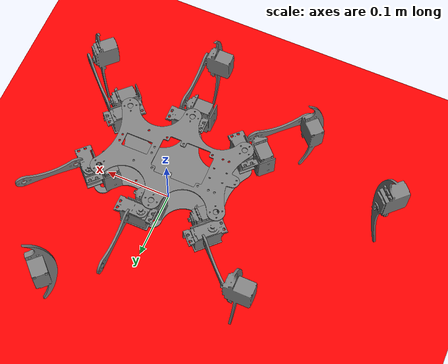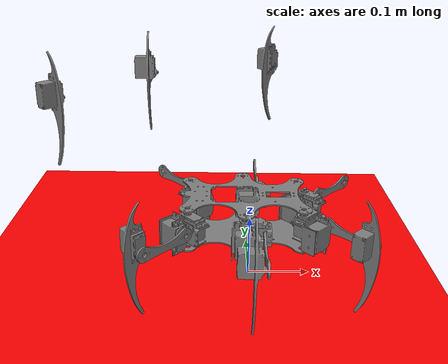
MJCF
<mujoco model="Hexapod:Nimbus">
    <asset>
        <texture type="skybox" builtin="gradient" rgb1="1 1 1" rgb2=".6 .8 1" width="256" height="256"/>
        <mesh name="upper" scale="0.001 0.001 0.001" file="STLs/Upper_Chassis.stl"></mesh>
        <mesh name="lower" scale="0.001 0.001 0.001" file="STLs/Lower_Chassis.stl"></mesh>
        <mesh name="coxa_left" scale="0.001 0.001 0.001" file="STLs/left_servo_with_bracket.stl"></mesh>
        <mesh name="coxa_right" scale="0.001 0.001 0.001" file="STLs/right_servo_with_bracket.stl"></mesh>
        <mesh name="femur" scale="0.001 0.001 0.001" file="STLs/Tibia.stl"></mesh>
        <mesh name="tibia_left" scale="0.001 0.001 0.001" file="STLs/left_leg_with_servo.stl"></mesh>
        <mesh name="tibia_right" scale="0.001 0.001 0.001" file="STLs/right_leg_with_servo.stl"></mesh>
    </asset>

    <default class="main">
        <geom condim="6" friction="1.2 0.5 0.01" />
        <joint limited="true" damping="3" stiffness="1" range="-60 60"/>
    </default>

<worldbody>
        <light pos="1 1 1" dir="0 -1 -1" diffuse="1 1 1"/>
        <geom type="plane" size="100 100 0.1" rgba="1 0 0 0.3"/>

        <body name="lower">
            <geom type="mesh" name="lower" mesh="lower" quat="0 0 0.707 0.707" pos="-0.010 0 .075" mass="0.294"></geom>
            <freejoint />
        </body>

        <body name="upper">
            <geom type="mesh" name="upper" mesh="upper" quat="0 0 0.707 0.707" pos="-.010 0 0.142" mass="0.216" ></geom>
            <freejoint />
        <body name="cx_1" pos=".091 -.0574 .112" euler="0 0 45">
            <geom type="mesh" name="coxa_left:1" mesh="coxa_left" euler="0 0 -90" mass="0.176"></geom>
            <joint name="coxa:1" type="hinge"  pos="-.005 .0163 .030" axis="0 0 1"/>
            <body  pos=".020 -.035 .0212" >
                <geom type="mesh" name="femur_left:1" mesh="femur" euler="90 90 -45"  mass="0.216"></geom>
                <joint name="femur:1" type="hinge"  pos=".003 .021 -.0145" axis="1 0 0"/>
                <body  pos=".105 .102 -.086" >
                    <geom type="mesh" name="tibia_left:1" mesh="tibia_left" euler="0 90 90" mass="0.085"></geom>
                    <joint name="tibia:1" type="hinge"  pos="-.105 -.1572 .0717" axis="1 0 0"/>
                    <site name="touch:1" size=".005" pos="-.123 -.1522 -.036" rgba="1 1 1 0"/>
                </body>
            </body>
        </body>
        <body name="cx_2" pos="-.0052 -.0842 .112">
            <geom type="mesh" name="coxa_left:2" mesh="coxa_left" euler="0 0 -90" mass="0.176"></geom>
            <joint name="coxa:2" type="hinge"  pos="-.005 .0163 .030" axis="0 0 1"/>
            <body  pos=".020 -.035 .0212" >
                <geom type="mesh" name="femur_left:2" mesh="femur" euler="90 90 -45"  mass="0.216"></geom>
                <joint name="femur:2" type="hinge"  pos=".003 .021 -.0145" axis="1 0 0"/>
                <body  pos=".105 .102 -.086" >
                    <geom type="mesh" name="tibia_left:2" mesh="tibia_left" euler="0 90 90" mass="0.085"></geom>
                    <joint name="tibia:2" type="hinge"  pos="-.105 -.1572 .0717" axis="1 0 0"/>
                    <site name="touch:2" size=".005" pos="-.123 -.1522 -.036" rgba="1 1 1 0"/>
                </body>
            </body>
        </body>
        <body name="cx_3" pos="-.1043 -.0641 .112" euler="0 0 -45">
            <geom type="mesh" name="coxa_left:3" mesh="coxa_left" euler="0 0 -90" mass="0.176"></geom>
            <joint name="coxa:3" type="hinge"  pos="-.005 .0163 .030" axis="0 0 1"/>
            <body  pos=".020 -.035 .0212" >
                <geom type="mesh" name="femur_left:3" mesh="femur" euler="90 90 -45"  mass="0.216"></geom>
                <joint name="femur:3" type="hinge"  pos=".003 .021 -.0145" axis="1 0 0"/>
                <body  pos=".105 .102 -.086" >
                    <geom type="mesh" name="tibia_left:3" mesh="tibia_left" euler="0 90 90" mass="0.085"></geom>
                    <joint name="tibia:3" type="hinge"  pos="-.105 -.1572 .0717" axis="1 0 0"/>
                    <site name="touch:3" size=".005" pos="-.123 -.1522 -.036" rgba="1 1 1 0"/>
                </body>
            </body>
        </body>

        <body name="cx_4" pos=".0867 .0393 .102" euler="0 0 -45">
            <geom type="mesh" name="coxa_right:1" mesh="coxa_right" euler="0 0 -90"  mass="0.176"></geom>
            <joint name="coxa:4" type="hinge"  pos="-.014 .001 .041" axis="0 0 1"/>
            <body  pos=".010 .0845 .0315" >
                <geom type="mesh" name="femur_right:1" mesh="femur" euler="90 90 -45"  mass="0.216"></geom>
                <joint name="femur:4" type="hinge"  pos=".003 -.0552 -.0145" axis="1 0 0"/>
                <body  pos="-.072 .1953 .0873" >
                    <geom type="mesh" name="tibia_right:1" mesh="tibia_right" euler="0 90 90"  mass="0.085"></geom>
                    <joint name="tibia:4" type="hinge"  pos=".075 -.1742 -.1018" axis="1 0 0"/>
                    <site name="touch:4" size=".005" pos=".055 -.182 -.210" rgba="1 1 1 0"/>
                </body>
            </body>
        </body>

        <body name="cx_5" pos=".0045 .0685 .102" >
            <geom type="mesh" name="coxa_right:2" mesh="coxa_right" euler="0 0 -90"  mass="0.176"></geom>
            <joint name="coxa:5" type="hinge"  pos="-.014 .001 .041" axis="0 0 1"/>
            <body  pos=".010 .0845 .0315" >
                <geom type="mesh" name="femur_right:2" mesh="femur" euler="90 90 -45"  mass="0.216"></geom>
                <joint name="femur:5" type="hinge"  pos=".003 -.0552 -.0145" axis="1 0 0"/>
                <body  pos="-.072 .1953 .0873" >
                    <geom type="mesh" name="tibia_right:2" mesh="tibia_right" euler="0 90 90"  mass="0.085"></geom>
                    <joint name="tibia:5" type="hinge"  pos=".075 -.1742 -.1018" axis="1 0 0"/>
                    <site name="touch:5" size=".005" pos=".055 -.182 -.210" rgba="1 1 1 0"/>
                </body>
            </body>
        </body>

        <body name="cx_6" pos="-.0863 .0597 .102" euler="0 0 45">
            <geom type="mesh" name="coxa_right:3" mesh="coxa_right" euler="0 0 -90"  mass="0.176"></geom>
            <joint name="coxa:6" type="hinge"  pos="-.014 .001 .041" axis="0 0 1"/>
            <body  pos=".010 .0845 .0315" >
                <geom type="mesh" name="femur_right:3" mesh="femur" euler="90 90 -45"  mass="0.216"></geom>
                <joint name="femur:6" type="hinge"  pos=".003 -.0552 -.0145" axis="1 0 0"/>
                <body  pos="-.072 .1953 .0873" >
                    <geom type="mesh" name="tibia_right:3" mesh="tibia_right" euler="0 90 90"  mass="0.085"></geom>
                    <joint name="tibia:6" type="hinge"  pos=".075 -.1742 -.1018" axis="1 0 0"/>
                    <site name="touch:6" size=".005" pos=".055 -.182 -.210" rgba="1 1 1 0"/>
                </body>
            </body>
        </body>

        </body>
</worldbody>

  <equality>
      <connect name="cc_2" body1="lower" body2="cx_2" anchor="-.0102 -.0679 .092"/>
      <connect name="cc_5" body1="lower" body2="cx_5" anchor="-.0102 .0679 .092"/>
      <connect name="cc_4" body1="lower" body2="cx_4" anchor=".0775 .0505 .092"/>
      <connect name="cc_6" body1="lower" body2="cx_6" anchor="-.0975 .0505 .092"/>
      <connect name="cc_1" body1="lower" body2="cx_1" anchor=".0775 -.0505 .092"/>
      <connect name="cc_3" body1="lower" body2="cx_3" anchor="-.0975 -.0505 .092"/>
  </equality>

  <sensor>
      <touch name="touch_1" site="touch:1"></touch>
      <touch name="touch_2" site="touch:2"></touch>
      <touch name="touch_3" site="touch:3"></touch>
      <touch name="touch_4" site="touch:4"></touch>
      <touch name="touch_5" site="touch:5"></touch>
      <touch name="touch_6" site="touch:6"></touch>
  </sensor>

  <actuator>
      <position name="coxa_1" forcelimited="true" forcerange="-10 10" kp="20" joint="coxa:1"/>
      <position name="coxa_2" forcelimited="true" forcerange="-10 10" kp="20" joint="coxa:2"/>
      <position name="coxa_3" forcelimited="true" forcerange="-10 10" kp="20" joint="coxa:3"/>
      <position name="coxa_4" forcelimited="true" forcerange="-10 10" kp="20" joint="coxa:4"/>
      <position name="coxa_5" forcelimited="true" forcerange="-10 10" kp="20" joint="coxa:5"/>
      <position name="coxa_6" forcelimited="true" forcerange="-10 10" kp="20" joint="coxa:6"/>
      <position name="femur_1" forcelimited="true" forcerange="-10 10" kp="20" joint="femur:1"/>
      <position name="femur_2" forcelimited="true" forcerange="-10 10" kp="20" joint="femur:2"/>
      <position name="femur_3" forcelimited="true" forcerange="-10 10" kp="20" joint="femur:3"/>
      <position name="femur_4" forcelimited="true" forcerange="-10 10" kp="20" joint="femur:4"/>
      <position name="femur_5" forcelimited="true" forcerange="-10 10" kp="20" joint="femur:5"/>
      <position name="femur_6" forcelimited="true" forcerange="-10 10" kp="20" joint="femur:6"/>
      <position name="tibia_1" forcelimited="true" forcerange="-10 10" kp="20" joint="tibia:1"/>
      <position name="tibia_2" forcelimited="true" forcerange="-10 10" kp="20" joint="tibia:2"/>
      <position name="tibia_3" forcelimited="true" forcerange="-10 10" kp="20" joint="tibia:3"/>
      <position name="tibia_4" forcelimited="true" forcerange="-10 10" kp="20" joint="tibia:4"/>
      <position name="tibia_5" forcelimited="true" forcerange="-10 10" kp="20" joint="tibia:5"/>
      <position name="tibia_6" forcelimited="true" forcerange="-10 10" kp="20" joint="tibia:6"/>
  </actuator>

</mujoco>
